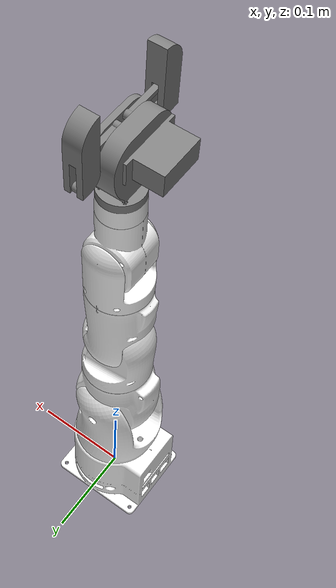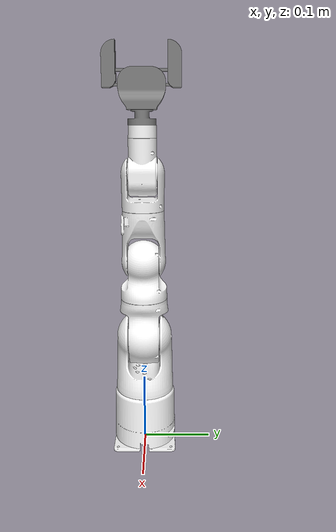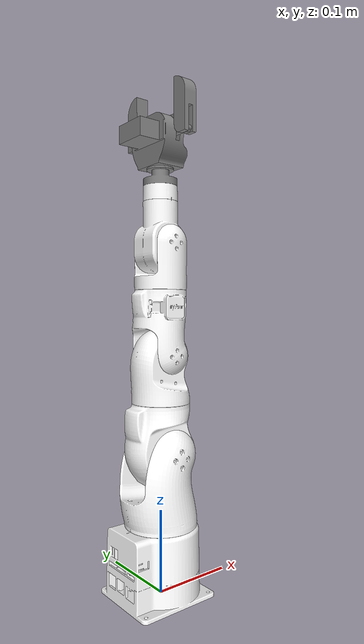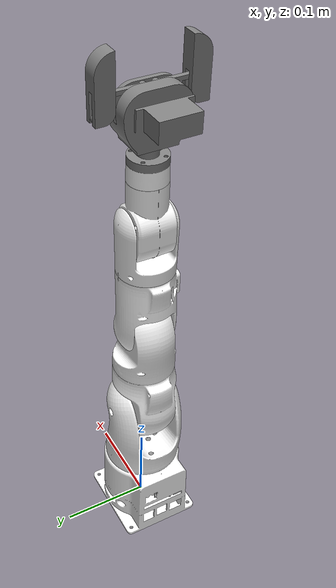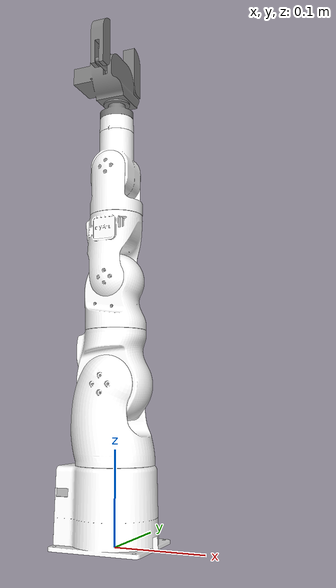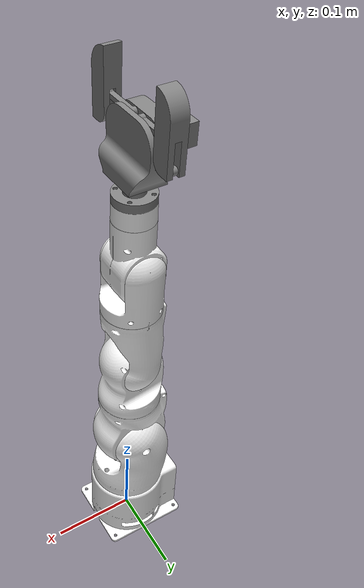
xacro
<?xml version="1.0"?>
<robot xmlns:xacro="http://www.ros.org/wiki/xacro" name="myarm_300_pi_thorgripper">
    <xacro:arg name="initial_positions_file" default="initial_positions.yaml" />

    <!-- Import myarm_300_pi_thorgripper urdf file -->
    <xacro:include filename="$(find myarm_300_pi)/urdf/myarm_300_pi_thorgripper.urdf" />

    <!-- Import control_xacro -->
    <xacro:include filename="myarm_300_pi_thorgripper.ros2_control.xacro" />

    <xacro:myarm_300_pi_thorgripper_ros2_control name="FakeSystem" initial_positions_file="$(arg initial_positions_file)"/>

</robot>

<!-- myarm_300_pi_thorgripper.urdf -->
<robot name="myarm_300_pi_thorgripper">

  <material name="white_arm"><color rgba="1.0 1.0 1.0 1.0"/></material>
  <material name="gray_part"><color rgba="0.5 0.5 0.5 1.0"/></material>

  <link name="world"/>
  <joint name="virtual_fixed_joint" type="fixed">
    <parent link="world"/>
    <child link="base"/>
    <origin xyz="0 0 0" rpy="0 0 0"/>
  </joint>

  <link name="base">
    <inertial><origin xyz="0 0 0" rpy="0 0 0"/><mass value="1.0"/><inertia ixx="0.01" ixy="0.0" ixz="0.0" iyy="0.01" iyz="0.0" izz="0.01"/></inertial>
    <visual><geometry><mesh filename="package://myarm_300_pi/meshes/base.stl"/></geometry><material name="white_arm"/></visual>
    <collision><geometry><mesh filename="package://myarm_300_pi/meshes/base.stl"/></geometry></collision>
  </link>

  <link name="link1">
    <inertial><origin xyz="0 0 0" rpy="0 0 0"/><mass value="0.5"/><inertia ixx="0.01" ixy="0.0" ixz="0.0" iyy="0.01" iyz="0.0" izz="0.01"/></inertial>
    <visual><geometry><mesh filename="package://myarm_300_pi/meshes/j1.stl"/></geometry><origin rpy="0 0 0" xyz="0 0 -0.086"/><material name="white_arm"/></visual>
    <collision><geometry><mesh filename="package://myarm_300_pi/meshes/j1.stl"/></geometry><origin rpy="0 0 0" xyz="0 0 -0.086"/></collision>
  </link>
  <joint name="joint1" type="revolute">
    <axis xyz="0 0 1"/><limit effort="1000.0" lower="-2.7925" upper="2.7925" velocity="2.0"/><parent link="base"/><child link="link1"/><origin rpy="0 0 0" xyz="0 0 0.1695"/>
  </joint>

  <link name="link2">
    <inertial><origin xyz="0 0 0" rpy="0 0 0"/><mass value="0.5"/><inertia ixx="0.01" ixy="0.0" ixz="0.0" iyy="0.01" iyz="0.0" izz="0.01"/></inertial>
    <visual><geometry><mesh filename="package://myarm_300_pi/meshes/j2.stl"/></geometry><origin rpy="3.14159 0 -1.5708" xyz="0 0 0"/><material name="white_arm"/></visual>
    <collision><geometry><mesh filename="package://myarm_300_pi/meshes/j2.stl"/></geometry><origin rpy="3.14159 0 -1.5708" xyz="0 0 0"/></collision>
  </link>
  <joint name="joint2" type="revolute">
    <axis xyz="0 0 1"/><limit effort="1000.0" lower="-1.2217" upper="2.0071" velocity="2.0"/><parent link="link1"/><child link="link2"/><origin rpy="-1.5708 0 0" xyz="0 0 0"/>
  </joint>

  <link name="link3">
    <inertial><origin xyz="0 0 0" rpy="0 0 0"/><mass value="0.5"/><inertia ixx="0.01" ixy="0.0" ixz="0.0" iyy="0.01" iyz="0.0" izz="0.01"/></inertial>
    <visual><geometry><mesh filename="package://myarm_300_pi/meshes/j3.stl"/></geometry><origin rpy="0 0 0" xyz="0 0 -0.056"/><material name="white_arm"/></visual>
    <collision><geometry><mesh filename="package://myarm_300_pi/meshes/j3.stl"/></geometry><origin rpy="0 0 0" xyz="0 0 -0.056"/></collision>
  </link>
  <joint name="joint3" type="revolute">
    <axis xyz="0 0 1"/><limit effort="1000.0" lower="-2.9670" upper="2.9670" velocity="2.0"/><parent link="link2"/><child link="link3"/><origin rpy="1.5708 0 0" xyz="0 -0.1155 0"/>
  </joint>

  <link name="link4">
    <inertial><origin xyz="0 0 0" rpy="0 0 0"/><mass value="0.5"/><inertia ixx="0.01" ixy="0.0" ixz="0.0" iyy="0.01" iyz="0.0" izz="0.01"/></inertial>
    <visual><geometry><mesh filename="package://myarm_300_pi/meshes/j4.stl"/></geometry><origin rpy="0 0 1.5708" xyz="0 0 0"/><material name="white_arm"/></visual>
    <collision><geometry><mesh filename="package://myarm_300_pi/meshes/j4.stl"/></geometry><origin rpy="0 0 1.5708" xyz="0 0 0"/></collision>
  </link>
  <joint name="joint4" type="revolute">
    <axis xyz="0 0 1"/><limit effort="1000.0" lower="-1.9722" upper="1.3089" velocity="2.0"/><parent link="link3"/><child link="link4"/><origin rpy="1.5708 0 0" xyz="0 0 0"/>
  </joint>

  <link name="link5">
    <inertial><origin xyz="0 0 0" rpy="0 0 0"/><mass value="0.5"/><inertia ixx="0.01" ixy="0.0" ixz="0.0" iyy="0.01" iyz="0.0" izz="0.01"/></inertial>
    <visual><geometry><mesh filename="package://myarm_300_pi/meshes/j5.stl"/></geometry><origin rpy="0 0 0" xyz="0 0 -0.0525"/><material name="white_arm"/></visual>
    <collision><geometry><mesh filename="package://myarm_300_pi/meshes/j5.stl"/></geometry><origin rpy="0 0 0" xyz="0 0 -0.0525"/></collision>
  </link>
  <joint name="joint5" type="revolute">
    <axis xyz="0 0 1"/><limit effort="1000.0" lower="-2.9670" upper="2.9670" velocity="2.0"/><parent link="link4"/><child link="link5"/><origin rpy="-1.5708 0 0" xyz="0 0.1278 0"/>
  </joint>

  <link name="link6">
    <inertial><origin xyz="0 0 0" rpy="0 0 0"/><mass value="0.5"/><inertia ixx="0.01" ixy="0.0" ixz="0.0" iyy="0.01" iyz="0.0" izz="0.01"/></inertial>
    <visual><geometry><mesh filename="package://myarm_300_pi/meshes/j6.stl"/></geometry><origin rpy="0 0 1.5708" xyz="0 0 0"/><material name="white_arm"/></visual>
    <collision><geometry><mesh filename="package://myarm_300_pi/meshes/j6.stl"/></geometry><origin rpy="0 0 1.5708" xyz="0 0 0"/></collision>
  </link>
  <joint name="joint6" type="revolute">
    <axis xyz="0 0 1"/><limit effort="1000.0" lower="-2.0071" upper="2.0071" velocity="2.0"/><parent link="link5"/><child link="link6"/><origin rpy="1.5708 0 0" xyz="0 0 0"/>
  </joint>

  <link name="link7">
    <inertial><origin xyz="0 0 0" rpy="0 0 0"/><mass value="0.5"/><inertia ixx="0.01" ixy="0.0" ixz="0.0" iyy="0.01" iyz="0.0" izz="0.01"/></inertial>
    <visual><geometry><mesh filename="package://myarm_300_pi/meshes/j7.stl"/></geometry><origin rpy="0 0 0" xyz="0.0002 -0.0002 -0.0185"/><material name="white_arm"/></visual>
    <collision><geometry><mesh filename="package://myarm_300_pi/meshes/j7.stl"/></geometry><origin rpy="0 0 0" xyz="0.0002 -0.0002 -0.0185"/></collision>
  </link>
  <joint name="joint7" type="revolute">
    <axis xyz="0 0 1"/><limit effort="1000.0" lower="-3.14159" upper="3.14159" velocity="2.0"/><parent link="link6"/><child link="link7"/><origin rpy="-1.5708 0 0" xyz="0 0.066 0"/>
  </joint>

  <link name="flange_link">
    <inertial><origin xyz="0 0 0" rpy="0 0 0"/><mass value="0.05"/><inertia ixx="0.001" ixy="0.0" ixz="0.0" iyy="0.001" iyz="0.0" izz="0.001"/></inertial>
    <visual><geometry><mesh filename="package://myarm_300_pi/meshes/flange.stl" scale="0.001 0.001 0.001"/></geometry><material name="gray_part"/></visual>
    <collision><geometry><mesh filename="package://myarm_300_pi/meshes/flange.stl" scale="0.001 0.001 0.001"/></geometry></collision>
  </link>
  <joint name="flange_joint" type="fixed">
    <parent link="link7"/><child link="flange_link"/><origin xyz="0 0 -0.001" rpy="0 0 0"/>
  </joint>

  <link name="gripper_base">
    <inertial><mass value="0.2"/><inertia ixx="0.001" ixy="0.0" ixz="0.0" iyy="0.001" iyz="0.0" izz="0.001"/></inertial>
    <visual><geometry><mesh filename="package://myarm_300_pi/meshes/GripperBase.stl" scale="0.001 0.001 0.001"/></geometry><material name="gray_part"/></visual>
    <collision><origin rpy="0 0 0" xyz="0 0 0.0275"/><geometry><box size="0.065 0.0348 0.055"/></geometry></collision>
  </link>
  <joint name="joint7_to_gripper_base" type="fixed">
    <parent link="flange_link"/><child link="gripper_base"/><origin rpy="0 0 1.5708" xyz="0 0 0.02"/>
  </joint>

  <link name="gripper_mid_point"><inertial><mass value="0.01"/><inertia ixx="0.001" ixy="0" ixz="0" iyy="0.001" iyz="0" izz="0.001"/></inertial></link>
  <link name="gripper_arm_gear_right"><inertial><mass value="0.01"/><inertia ixx="0.001" ixy="0" ixz="0" iyy="0.001" iyz="0" izz="0.001"/></inertial><visual><origin rpy="0 -1.57 1.57"/><geometry><mesh filename="package://myarm_300_pi/meshes/GripperArmGear.stl" scale="0.001 0.001 0.001"/></geometry><material name="gray_part"/></visual><collision><origin xyz="0.0175 -0.0025 0.0"/><geometry><box size="0.035 0.005 0.004"/></geometry></collision></link>
  <link name="gripper_arm_gear_left"><inertial><mass value="0.01"/><inertia ixx="0.001" ixy="0" ixz="0" iyy="0.001" iyz="0" izz="0.001"/></inertial><visual><origin rpy="0 1.57 -1.57"/><geometry><mesh filename="package://myarm_300_pi/meshes/GripperArmGear.stl" scale="0.001 0.001 0.001"/></geometry><material name="gray_part"/></visual><collision><origin xyz="-0.0175 -0.0025 0.0"/><geometry><box size="0.035 0.005 0.004"/></geometry></collision></link>
  <link name="gripper_arm_simple_right"><inertial><mass value="0.01"/><inertia ixx="0.001" ixy="0" ixz="0" iyy="0.001" iyz="0" izz="0.001"/></inertial><visual><origin rpy="0 -1.57 1.57"/><geometry><mesh filename="package://myarm_300_pi/meshes/GripperArm.stl" scale="0.001 0.001 0.001"/></geometry><material name="gray_part"/></visual><collision><origin xyz="0.0175 -0.0025 0.0"/><geometry><box size="0.035 0.005 0.004"/></geometry></collision></link>
  <link name="gripper_arm_simple_left"><inertial><mass value="0.01"/><inertia ixx="0.001" ixy="0" ixz="0" iyy="0.001" iyz="0" izz="0.001"/></inertial><visual><origin rpy="0 1.57 -1.57"/><geometry><mesh filename="package://myarm_300_pi/meshes/GripperArm.stl" scale="0.001 0.001 0.001"/></geometry><material name="gray_part"/></visual><collision><origin xyz="-0.0175 -0.0025 0.0"/><geometry><box size="0.035 0.005 0.004"/></geometry></collision></link>
  <link name="gripper_finger_right"><inertial><mass value="0.01"/><inertia ixx="0.001" ixy="0" ixz="0" iyy="0.001" iyz="0" izz="0.001"/></inertial><visual><origin rpy="0 0 0" xyz="0 0 0"/><geometry><mesh filename="package://myarm_300_pi/meshes/GripperFinger.stl" scale="0.001 0.001 0.001"/></geometry><material name="gray_part"/></visual><collision><origin xyz="0.00525 0.026 0.00775"/><geometry><box size="0.0185 0.06 0.0155"/></geometry></collision></link>
  <link name="gripper_finger_left"><inertial><mass value="0.01"/><inertia ixx="0.001" ixy="0" ixz="0" iyy="0.001" iyz="0" izz="0.001"/></inertial><visual><origin rpy="0 0 0" xyz="0 0 0"/><geometry><mesh filename="package://myarm_300_pi/meshes/GripperFinger.stl" scale="0.001 0.001 0.001"/></geometry><material name="gray_part"/></visual><collision><origin xyz="0.00525 0.026 0.00775"/><geometry><box size="0.0185 0.06 0.0155"/></geometry></collision></link>
  <link name="endeffector"><inertial><mass value="0.01"/><inertia ixx="0.001" ixy="0" ixz="0" iyy="0.001" iyz="0" izz="0.001"/></inertial></link>

  <joint name="gripperbase_to_midpoint" type="fixed"><parent link="gripper_base"/><child link="gripper_mid_point"/><origin rpy="0 0 0" xyz="0 0 0.075"/></joint>
  <joint name="link7_to_endeffector" type="fixed"><parent link="link7"/><child link="endeffector"/><origin rpy="0 0 0" xyz="0 0 0.1"/></joint>

  <joint name="endeffector_gripper" type="revolute">
    <parent link="gripper_base"/><child link="gripper_arm_gear_right"/><origin rpy="0 0 0" xyz="0.0145 0.00275 0.0325"/><axis xyz="0 1 0"/><limit effort="4.0" lower="-1.57" upper="0" velocity="1.0"/>
  </joint>

  <joint name="gripperbase_to_armgearleft" type="revolute">
    <parent link="gripper_base"/><child link="gripper_arm_gear_left"/><origin rpy="0 0 0" xyz="-0.0145 0.00275 0.0325"/><axis xyz="0 1 0"/><limit effort="4.0" lower="0" upper="1.57" velocity="1.0"/><mimic joint="endeffector_gripper" multiplier="-1"/>
  </joint>

  <joint name="gripperbase_to_armsimpleright" type="revolute">
    <parent link="gripper_base"/><child link="gripper_arm_simple_right"/><origin rpy="0 0 0" xyz="0.006 0.00275 0.051"/><axis xyz="0 1 0"/><limit effort="4.0" lower="-1.57" upper="0" velocity="1.0"/><mimic joint="endeffector_gripper" multiplier="1"/>
  </joint>

  <joint name="gripperbase_to_armsimpleleft" type="revolute">
    <parent link="gripper_base"/><child link="gripper_arm_simple_left"/><origin rpy="0 0 0" xyz="-0.006 0.00275 0.051"/><axis xyz="0 1 0"/><limit effort="4.0" lower="0" upper="1.57" velocity="1.0"/><mimic joint="endeffector_gripper" multiplier="-1"/>
  </joint>

  <joint name="armgearright_to_fingerright" type="revolute">
    <parent link="gripper_arm_gear_right"/><child link="gripper_finger_right"/><origin rpy="-1.57 3.14 0" xyz="0.035 -0.01023 0"/><axis xyz="0 0 1"/><limit effort="4.0" lower="0" upper="1.57" velocity="1.0"/><mimic joint="endeffector_gripper" multiplier="-1"/>
  </joint>

  <joint name="armgearleft_to_fingerleft" type="revolute">
    <parent link="gripper_arm_gear_left"/><child link="gripper_finger_left"/><origin rpy="1.57 0 0" xyz="-0.035 0.005175 0"/><axis xyz="0 0 1"/><limit effort="4.0" lower="0" upper="1.57" velocity="1.0"/><mimic joint="endeffector_gripper" multiplier="-1"/>
  </joint>

  <gazebo>
    <plugin filename="libgazebo_ros2_control.so" name="gazebo_ros2_control">
      <parameters>/home/vkaratrantos/elephant_robots_ws/src/robot_config/config/ros2_controllers.yaml</parameters>
    </plugin>
  </gazebo>

  <ros2_control name="GazeboSystem" type="system">
    <hardware><plugin>gazebo_ros2_control/GazeboSystem</plugin></hardware>

    <joint name="joint1"><command_interface name="position"/><state_interface name="position"/><state_interface name="velocity"/></joint>
    <joint name="joint2"><command_interface name="position"/><state_interface name="position"/><state_interface name="velocity"/></joint>
    <joint name="joint3"><command_interface name="position"/><state_interface name="position"/><state_interface name="velocity"/></joint>
    <joint name="joint4"><command_interface name="position"/><state_interface name="position"/><state_interface name="velocity"/></joint>
    <joint name="joint5"><command_interface name="position"/><state_interface name="position"/><state_interface name="velocity"/></joint>
    <joint name="joint6"><command_interface name="position"/><state_interface name="position"/><state_interface name="velocity"/></joint>
    <joint name="joint7"><command_interface name="position"/><state_interface name="position"/><state_interface name="velocity"/></joint>

    <joint name="endeffector_gripper"><command_interface name="position"/><state_interface name="position"/><state_interface name="velocity"/></joint>

    <joint name="gripperbase_to_armgearleft"><command_interface name="position"/><state_interface name="position"/><state_interface name="velocity"/></joint>
    <joint name="gripperbase_to_armsimpleright"><command_interface name="position"/><state_interface name="position"/><state_interface name="velocity"/></joint>
    <joint name="gripperbase_to_armsimpleleft"><command_interface name="position"/><state_interface name="position"/><state_interface name="velocity"/></joint>
    <joint name="armgearright_to_fingerright"><command_interface name="position"/><state_interface name="position"/><state_interface name="velocity"/></joint>
    <joint name="armgearleft_to_fingerleft"><command_interface name="position"/><state_interface name="position"/><state_interface name="velocity"/></joint>
  </ros2_control>

</robot>
